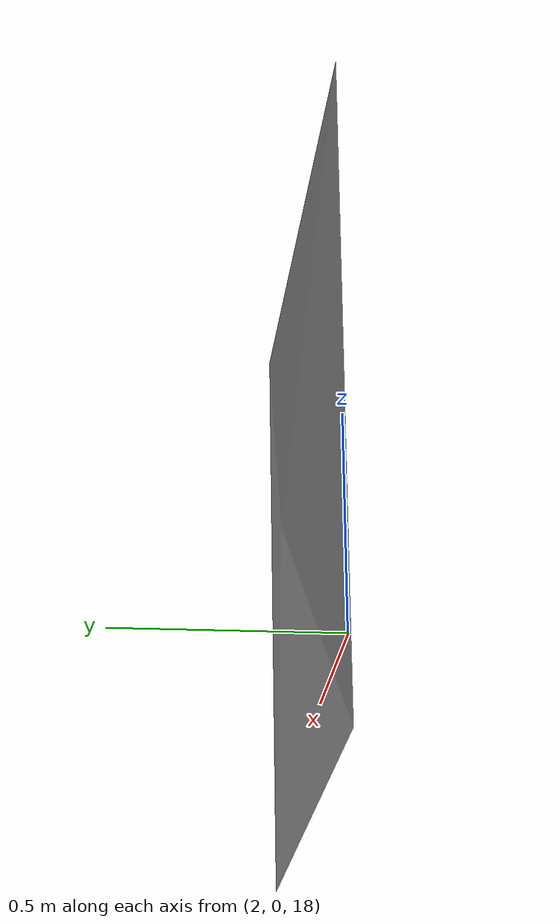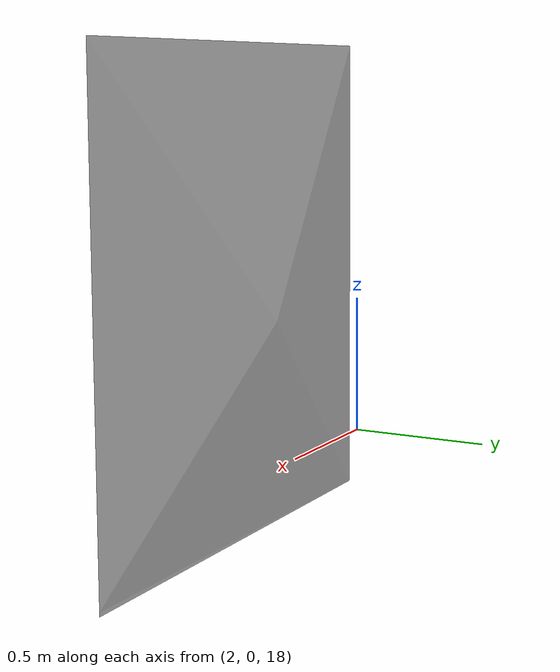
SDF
<?xml version="1.0" ?>
<sdf version="1.9">
  <model name="clover_01">
    <static>true</static>
    <link name="link">
      <collision name="collision">
        <pose>0 0 0.1 0 0 0</pose>
        <geometry>
          <box>
            <size>0.4 0.4 0.2</size>
          </box>
        </geometry>
      </collision>
      <visual name="visual">
        <geometry>
          <mesh>
            <uri>model://clover_01/meshes/Clover-01.obj</uri>
          </mesh>
        </geometry>
      </visual>
    </link>
  </model>
</sdf>
